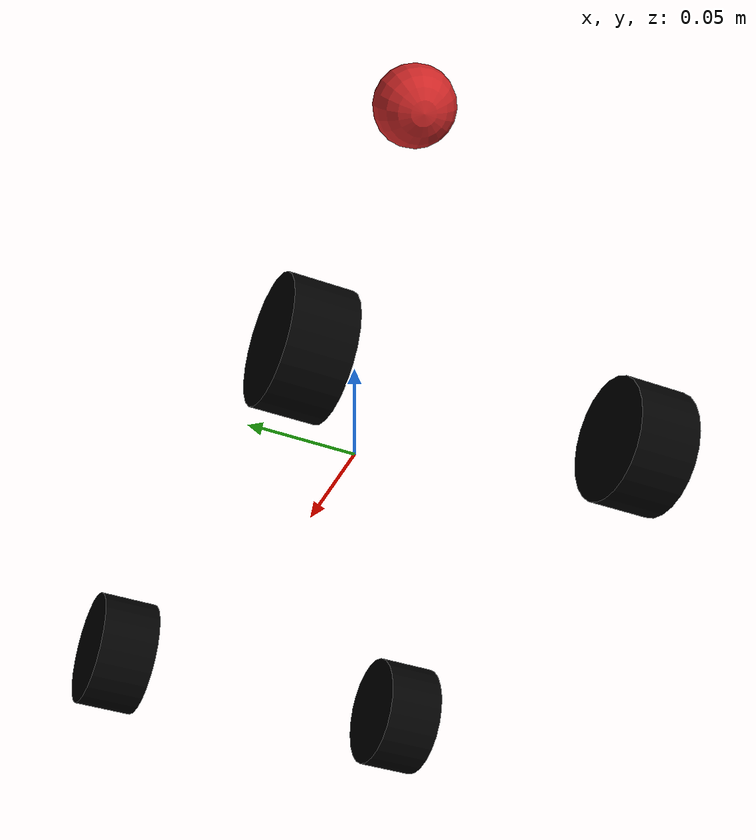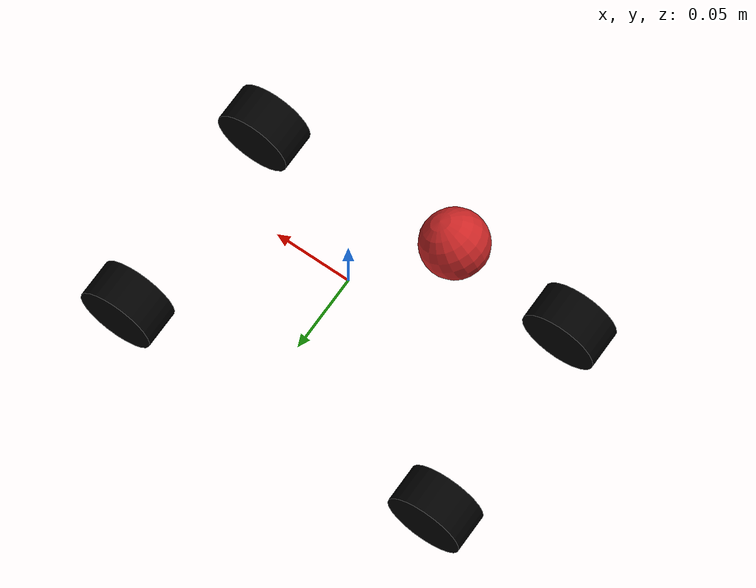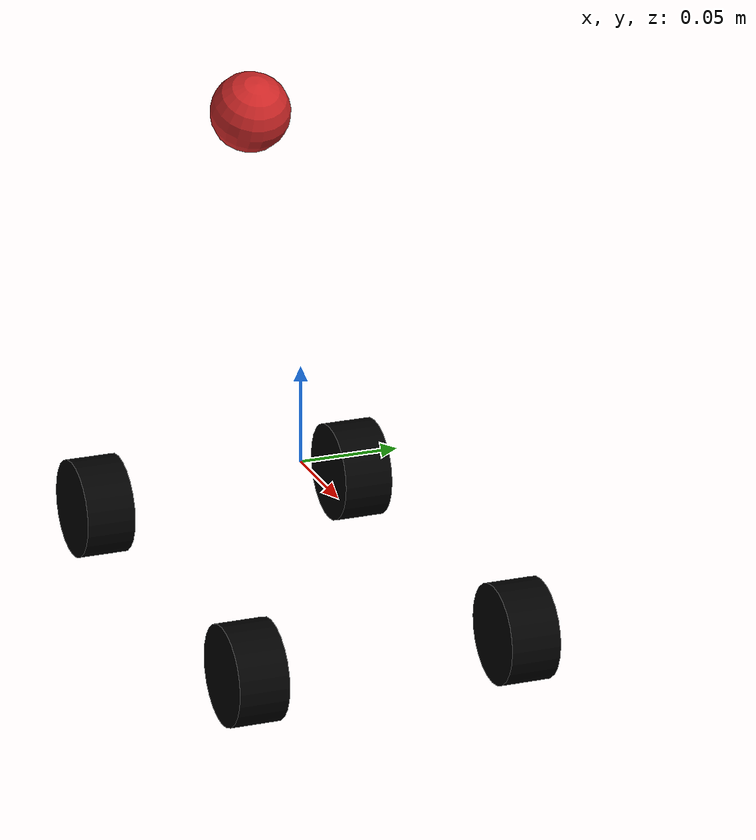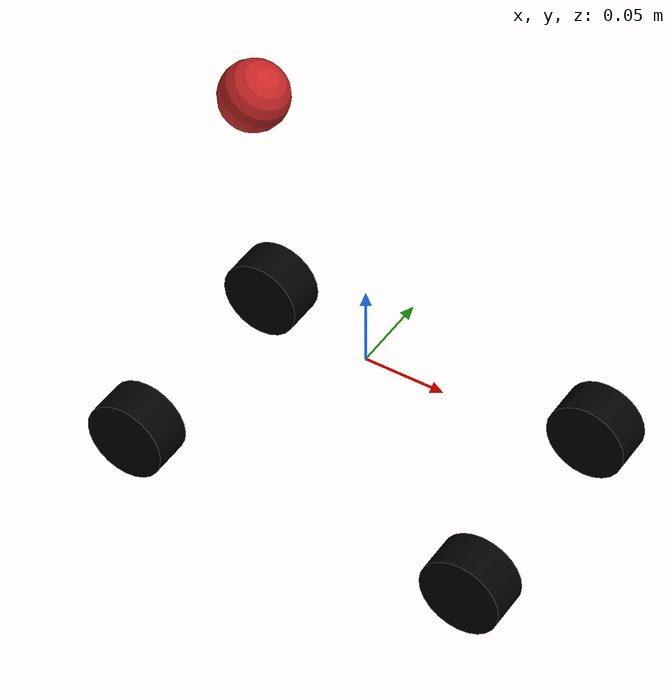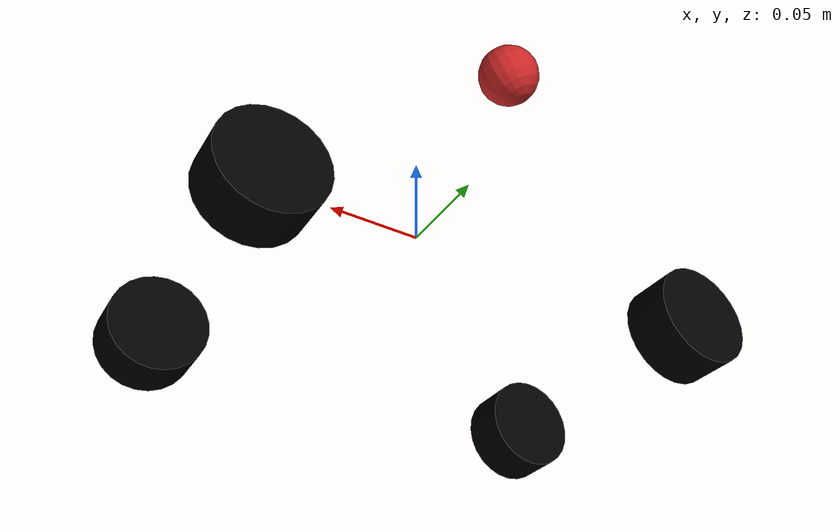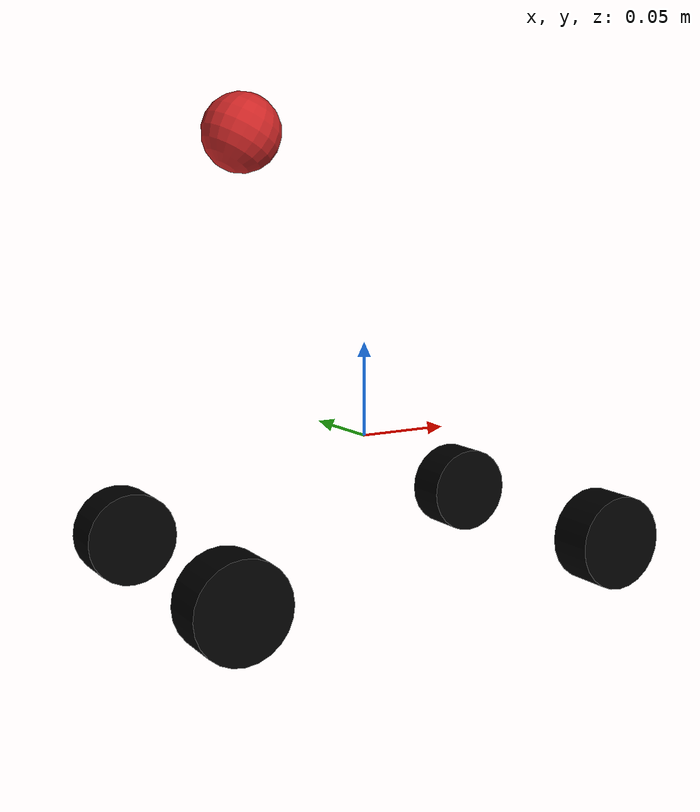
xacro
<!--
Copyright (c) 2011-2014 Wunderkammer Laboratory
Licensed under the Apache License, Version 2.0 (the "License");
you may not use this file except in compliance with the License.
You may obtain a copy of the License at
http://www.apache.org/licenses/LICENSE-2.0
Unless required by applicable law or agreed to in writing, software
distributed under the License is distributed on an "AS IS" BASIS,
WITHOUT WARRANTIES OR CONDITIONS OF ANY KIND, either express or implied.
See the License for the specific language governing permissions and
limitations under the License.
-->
<?xml version="1.0"?>

<robot name="em_3905" xmlns:xacro="http://www.ros.org/wiki/xacro">
  <!-- Degree-to-radian conversions -->
  <xacro:property name="degrees_45" value="0.785398163"/>
  <xacro:property name="degrees_90" value="1.57079633"/>

  <!-- chassis_length is measured along the x axis, chassis_width
       along the y axis, and chassis_height along the z axis. -->
  <xacro:property name="chassis_length" value="0.01"/>
  <xacro:property name="chassis_width" value="0.01"/>
  <xacro:property name="chassis_height" value="0.01"/>
  <xacro:property name="chassis_mass" value=".788"/>

  <xacro:property name="battery_x_offset" value="0.055"/>
  <xacro:property name="battery_dist" value="0.065"/>
  <xacro:property name="battery_comp_depth" value="0.02"/>
  <xacro:property name="battery_comp_angle" value="0.34906585"/>
  <xacro:property name="battery_length" value="0.16"/>
  <xacro:property name="battery_width" value="0.047"/>
  <xacro:property name="battery_height" value="0.024"/>
  <xacro:property name="battery_mass" value="0.5025"/>

  <xacro:property name="hub_dia" value="0.005"/>
  <xacro:property name="tire_dia" value="0.05"/>
  <xacro:property name="tire_width" value="0.025"/>
  <xacro:property name="hex_hub_depth" value="0.005"/>
  <xacro:property name="wheel_mass" value="5"/>

  <xacro:property name="wheelbase" value="0.22"/>
  <xacro:property name="hex_hub_dist" value="0.153"/>
  <xacro:property name="axle_length" value="0.0075"/>
  <xacro:property name="wheel_travel" value="0.02"/>
  <xacro:property name="shock_z_offset" value="0.0655"/>

  <xacro:property name="shock_eff_limit" value="12.5106"/>
  <xacro:property name="shock_vel_limit" value="1000"/>

  <xacro:property name="axle_eff_limit" value="5.12766"/>
  <xacro:property name="axle_vel_limit" value="244.8696"/>

  <xacro:property name="servo_stall_torque" value="0.5649"/>
  <xacro:property name="servo_no_load_speed" value="4.553"/>

  <material name="battery_mat">
    <color rgba="0 0 1 1"/>
  </material>
  <material name="chassis_mat">
    <color rgba="0.5 0.5 0.5 1"/>
  </material>
  <material name="tire_mat">
    <color rgba="0 0 0 1"/>
  </material>

  <!-- Null inertial element. This is needed to make the model work with
       Gazebo. -->
  <xacro:macro name="null_inertial">
    <inertial>
      <mass value="0.001"/>
      <inertia ixx="0.001" ixy="0" ixz="0" iyy="0.001" iyz="0" izz="0.001"/>
    </inertial>
  </xacro:macro>

  <!-- Inertia of a solid cuboid. Width is measured along the x axis, depth
       along the y axis, and height along the z axis. -->
  <xacro:macro name="solid_cuboid_inertial"
               params="width depth height mass *origin">
    <inertial>
      <xacro:insert_block name="origin"/>
      <mass value="${mass}"/>
      <inertia ixx="${mass * (depth * depth + height * height) / 12}"
               ixy="0" ixz="0"
               iyy="${mass * (width * width + height * height) / 12}"
               iyz="0"
               izz="${mass * (width * width + depth * depth) / 12}"/>
    </inertial>
  </xacro:macro>

  <xacro:macro name="thick_walled_tube_inertial"
               params="inner_rad outer_rad height mass">
    <inertial>
      <mass value="${mass}"/>
      <inertia ixx="${(1 / 12) * mass * (3 * (inner_rad * inner_rad +
                    outer_rad * outer_rad) + height * height)}"
               ixy="0" ixz="0"
               iyy="${(1 / 12) * mass * (3 * (inner_rad * inner_rad +
                    outer_rad * outer_rad) + height * height)}"
               iyz="0"
               izz="${mass * (inner_rad * inner_rad +
                    outer_rad * outer_rad) / 2}"/>
    </inertial>
  </xacro:macro>

  <!-- Shock absorber -->
  <xacro:macro name="shock"
               params="lr_prefix fr_prefix lr_reflect fr_reflect child">
    <joint name="${lr_prefix}_${fr_prefix}_shock" type="prismatic">
      <parent link="chassis"/>
      <child link="${child}"/>

      <origin xyz="${fr_reflect * wheelbase / 2}
                   ${lr_reflect * ((hex_hub_dist / 2) - axle_length)}
                   ${(wheel_travel / 2) - shock_z_offset}"/>
      <axis xyz="0 0 -1"/>
      <limit lower="${-wheel_travel / 2}" upper="${wheel_travel / 2}"
             effort="${shock_eff_limit}" velocity="${shock_vel_limit}"/>
    </joint>
    <transmission name="${lr_prefix}_${fr_prefix}_shock_trans">
      <type>transmission_interface/SimpleTransmission</type>
      <joint name="${lr_prefix}_${fr_prefix}_shock">
        <hardwareInterface>hardware_interface/EffortJointInterface</hardwareInterface>
      </joint>
      <actuator name="${lr_prefix}_${fr_prefix}_shock_act">
        <!-- This hardwareInterface element exists for compatibility
             with ROS Hydro. -->
        <hardwareInterface>hardware_interface/EffortJointInterface</hardwareInterface>
        <mechanicalReduction>1</mechanicalReduction>
      </actuator>
    </transmission>
  </xacro:macro>

  <!-- The "wheel" macro defines an axle carrier, axle, and wheel. -->
  <xacro:macro name="wheel" params="lr_prefix fr_prefix lr_reflect">
    <link name="${lr_prefix}_${fr_prefix}_axle_carrier">
      <xacro:null_inertial/>
    </link>

    <!-- The left and right axles have the same axis so that identical
         rotation values cause the wheels to rotate in the same direction. -->
    <joint name="${lr_prefix}_${fr_prefix}_axle" type="continuous">
      <parent link="${lr_prefix}_${fr_prefix}_axle_carrier"/>
      <child link="${lr_prefix}_${fr_prefix}_wheel"/>
      <origin rpy="${degrees_90} 0 0"/>
      <axis xyz="0 0 -1"/>
      <limit effort="${axle_eff_limit}" velocity="${axle_vel_limit}"/>
    </joint>
    <transmission name="${lr_prefix}_${fr_prefix}_axle_trans">
      <type>transmission_interface/SimpleTransmission</type>
      <joint name="${lr_prefix}_${fr_prefix}_axle">
        <hardwareInterface>hardware_interface/EffortJointInterface</hardwareInterface>
      </joint>
      <actuator name="${lr_prefix}_${fr_prefix}_axle_act">
        <!-- This hardwareInterface element exists for compatibility
             with ROS Hydro. -->
        <hardwareInterface>hardware_interface/EffortJointInterface</hardwareInterface>
        <mechanicalReduction>1</mechanicalReduction>
      </actuator>
    </transmission>

    <link name="${lr_prefix}_${fr_prefix}_wheel">
      <visual>
        <origin xyz="0
                     ${lr_reflect * (axle_length - (tire_width /
                     2 - hex_hub_depth))}
                     0"/>
        <geometry>
          <cylinder radius="${tire_dia / 2}" length="${tire_width}"/>
        </geometry>
        <material name="tire_mat"/>
      </visual>

      <collision>
        <origin xyz="0
                     ${lr_reflect * (axle_length - (tire_width /
                     2 - hex_hub_depth))}
                     0"/>
        <geometry>
          <cylinder radius="${tire_dia / 2}" length="${tire_width}"/>
        </geometry>
      </collision>

      <xacro:thick_walled_tube_inertial
          inner_rad="${hub_dia / 2}" outer_rad="${tire_dia / 2}"
          height="${tire_width}" mass="${wheel_mass}"/>
    </link>

    <gazebo reference="${lr_prefix}_${fr_prefix}_wheel">
      <material>Gazebo/Gold</material>
    </gazebo>
  </xacro:macro>

  <!-- Front wheel -->
  <xacro:macro name="front_wheel"
               params="lr_prefix fr_prefix lr_reflect fr_reflect">
    <xacro:shock lr_prefix="${lr_prefix}" fr_prefix="${fr_prefix}"
                 lr_reflect="${lr_reflect}" fr_reflect="${fr_reflect}"
                 child="${lr_prefix}_steering_link"/>

    <link name="${lr_prefix}_steering_link">
      <xacro:null_inertial/>
    </link>

    <joint name="${lr_prefix}_steering_joint" type="revolute">
      <parent link="${lr_prefix}_steering_link"/>
      <child link="${lr_prefix}_${fr_prefix}_axle_carrier"/>
      <axis xyz="0 0 1"/>
      <limit lower="${-degrees_45}" upper="${degrees_45}"
             effort="${servo_stall_torque}" velocity="${servo_no_load_speed}"/>
    </joint>
    <transmission name="${lr_prefix}_steering_trans">
      <type>transmission_interface/SimpleTransmission</type>
      <joint name="${lr_prefix}_steering_joint">
        <hardwareInterface>hardware_interface/EffortJointInterface</hardwareInterface>
      </joint>
      <actuator name="${lr_prefix}_steering_act">
        <!-- This hardwareInterface element exists for compatibility
             with ROS Hydro. -->
        <hardwareInterface>hardware_interface/EffortJointInterface</hardwareInterface>
        <mechanicalReduction>1</mechanicalReduction>
      </actuator>
    </transmission>

    <xacro:wheel lr_prefix="${lr_prefix}" fr_prefix="${fr_prefix}"
                 lr_reflect="${lr_reflect}"/>
  </xacro:macro>

  <!-- Rear wheel -->
  <xacro:macro name="rear_wheel"
               params="lr_prefix fr_prefix lr_reflect fr_reflect">
    <xacro:shock lr_prefix="${lr_prefix}" fr_prefix="${fr_prefix}"
                 lr_reflect="${lr_reflect}" fr_reflect="${fr_reflect}"
                 child="${lr_prefix}_${fr_prefix}_axle_carrier"/>
    <xacro:wheel lr_prefix="${lr_prefix}" fr_prefix="${fr_prefix}"
                 lr_reflect="${lr_reflect}"/>
  </xacro:macro>

  <!-- base_link must have geometry so that its axes can be displayed in
       rviz. -->
  <link name="base_link">

  </link>
  <gazebo reference="base_link">
    <material>Gazebo/Grey</material>
  </gazebo>

  <!-- Chassis -->
  <link name="chassis">

    <xacro:solid_cuboid_inertial
        width="${chassis_length}" depth="${chassis_width}"
        height="${chassis_height}" mass="${chassis_mass}">
      <origin xyz="0 0 ${-chassis_height / 2}"/>
    </xacro:solid_cuboid_inertial>
  </link>
  <gazebo reference="chassis">
    <material>Gazebo/Grey</material>
  </gazebo>

  <joint name="base_link_to_chassis" type="fixed">
    <parent link="base_link"/>
    <child link="chassis"/>
  </joint>

  <!-- Wheels -->
  <xacro:front_wheel lr_prefix="left" fr_prefix="front"
                     lr_reflect="1" fr_reflect="1"/>
  <xacro:front_wheel lr_prefix="right" fr_prefix="front"
                     lr_reflect="-1" fr_reflect="1"/>
  <xacro:rear_wheel lr_prefix="left" fr_prefix="rear"
                    lr_reflect="1" fr_reflect="-1"/>
  <xacro:rear_wheel lr_prefix="right" fr_prefix="rear"
                    lr_reflect="-1" fr_reflect="-1"/>

  <joint name="camera_joint" type="fixed">
    <axis xyz="0 1 0" />
    <origin xyz="-0.07 0 0.158" rpy="0 ${pi/6} 0"/>
    <parent link="chassis"/>
    <child link="camera_link"/>
  </joint>

  <!-- Camera -->
  <link name="camera_link">
    <visual>
      <origin xyz="0 0 0" rpy="0 0 0"/>
      <geometry>

        <sphere radius="0.02"/>

      </geometry>
      <material name="red"/>
    </visual>

    <inertial>
      <mass value="1e-5" />
      <origin xyz="0 0 0" rpy="0 0 0"/>
      <inertia ixx="1e-6" ixy="0" ixz="0" iyy="1e-6" iyz="0" izz="1e-6" />
    </inertial>

  </link>

  <gazebo reference="camera_link">
    <material>Gazebo/Grey</material>
  </gazebo>

<!--generate an optical frame http://www.ros.org/reps/rep-0103.html#suffix-frames
      so that ros and opencv can operate on the camera frame correctly -->
  <joint name="camera_optical_joint" type="fixed">
 <!--    these values have to be these values otherwise the gazebo camera image
        won't be aligned properly with the frame it is supposedly originating from ${-pi/2} ${-pi/4} ${-pi/2}" -->
    <origin xyz="0 0 0" rpy="${-pi/2} 0 ${-pi/2}"/>
    <parent link="camera_link"/>
    <child link="camera_link_optical"/>
  </joint>

  <link name="camera_link_optical">
  </link>

  <gazebo>
    <plugin name="gazebo_ros_control" filename="libgazebo_ros_control.so"/>
  </gazebo>

  <gazebo>
<plugin name="p3d_base_controller" filename="libgazebo_ros_p3d.so">
  <alwaysOn>true</alwaysOn>
  <updateRate>50.0</updateRate>
  <bodyName>base_link</bodyName>
  <topicName>odom</topicName>
  <gaussianNoise>0.01</gaussianNoise>
  <frameName>world</frameName>
  <xyzOffsets>0 0 0</xyzOffsets>
  <rpyOffsets>0 0 0</rpyOffsets>
</plugin>
  </gazebo>

  <!-- camera  horizontal_fov 2.1  width 1280 height 680-->
  <gazebo reference="camera_link">
    <sensor type="camera" name="camera1">
      <update_rate>60.0</update_rate>
      <camera name="head">
        <horizontal_fov>2.41</horizontal_fov>
        <image>
          <width>1280</width>
          <height>720</height>
          <format>L8</format>
        </image>
        <clip>
          <near>0.02</near>
          <far>300</far>
        </clip>
        <noise>
          <type>gaussian</type>
          <!-- Noise is sampled independently per pixel on each frame.
               That pixel's noise value is added to each of its color
               channels, which at that point lie in the range [0,1]. -->
          <mean>0.0</mean>
          <stddev>0.000</stddev>
        </noise>
      </camera>
      <plugin name="camera_controller" filename="libgazebo_ros_camera.so">
        <alwaysOn>true</alwaysOn>
        <updateRate>0.0</updateRate>
        <cameraName>rrbot/camera1</cameraName>
        <imageTopicName>image_raw</imageTopicName>
        <cameraInfoTopicName>camera_info</cameraInfoTopicName>
        <frameName>camera_link_optical</frameName>
        <!-- setting hackBaseline to anything but 0.0 will cause a misalignment
            between the gazebo sensor image and the frame it is supposed to
            be attached to -->
        <hackBaseline>0.0</hackBaseline>
        <distortionK1>0.0</distortionK1>
        <distortionK2>0.0</distortionK2>
        <distortionK3>0.0</distortionK3>
        <distortionT1>0.0</distortionT1>
        <distortionT2>0.0</distortionT2>
        <CxPrime>0</CxPrime>
        <Cx>0.0</Cx>
        <Cy>0.0</Cy>
        <focalLength>0.0</focalLength>
      </plugin>
    </sensor>
  </gazebo>

</robot>
